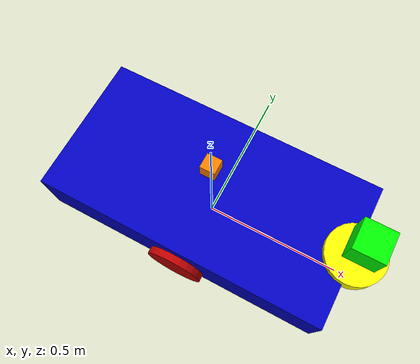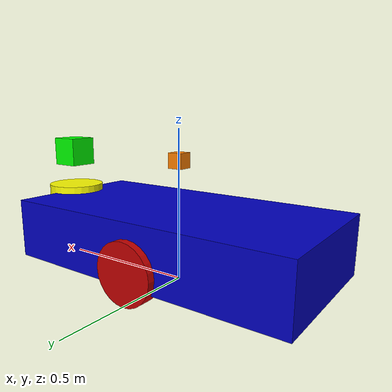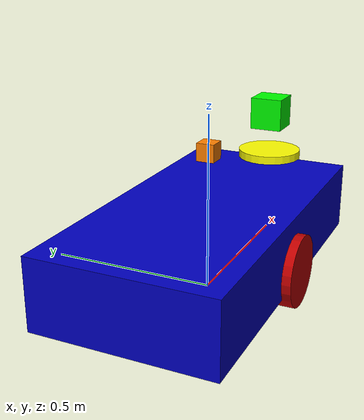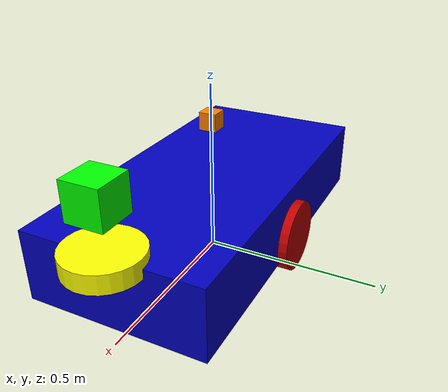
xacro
<?xml version="1.0"?>
<robot name="robor" xmlns:xacro="http://ros.org/wiki/xacro">

  <!-- Common Properties -->
    <xacro:property name="wheel_radius" value="0.1"/>
    <xacro:property name="wheel_length" value="0.05"/>
    <xacro:property name="body_length" value="1.0"/>
    <xacro:property name="body_width" value="0.5"/>
    <xacro:property name="body_height" value="0.2"/>
    <xacro:property name="sensor_box_size" value="0.1"/>
    <xacro:property name="imu_box_size" value="0.05"/>

    <link name="world"/>

    <joint name="world_to_base_link" type="">
        <parent link="world"/>
        <child link="base_link"/>
        <origin xyz="0 0 0.1" rpy="0 0 0"/>
    </joint>

    <!-- Main Body -->
    <link name="base_link">
    <inertial>
        <origin xyz="0 0 0.1"/>
        <mass value="5.0"/>
        <inertia ixx="1.0" ixy="0.0" ixz="0.0" iyy="1.0" iyz="0.0" izz="1.0"/>
    </inertial>

        <collision name="base_link_collision">
            <geometry>
            <box size="${body_length} ${body_width} ${body_height}"/>
            </geometry>
            <origin xyz="0 0 0.5"/>
        </collision>
        <visual>
            <geometry>
            <box size="${body_length} ${body_width} ${body_height}"/>
            </geometry>
            <material name="blue">
            <color rgba="0 0 0.75 1"/>
            </material>
            <origin xyz="0 0 0.05" rpy="0 0 0"/>
        </visual>
    </link>

            <!-- Wheels -->
    <link name="wheel1">
        <inertial>
        <origin xyz="0 0 0"/>
        <mass value="0.5"/>
        <inertia ixx="0.005" ixy="0.0" ixz="0.0" iyy="0.005" iyz="0.0" izz="0.005"/>
        </inertial>
        <collision name="wheel1_collision">
        <geometry>
            <cylinder radius="${wheel_radius}" length="${wheel_length}"/>
        </geometry>
        <origin xyz="0 0 0" rpy="1.57 0 0"/>
        <surface>
            <friction>
            <ode>
                <mu>1.0</mu>
                <mu2>1.0</mu2>
            </ode>
            </friction>
        </surface>
        </collision>
        <visual>
        <geometry>
            <cylinder radius="${wheel_radius}" length="${wheel_length}"/>
        </geometry>
        <material name="red">
            <color rgba="0.75 0 0 1"/>
        </material>
        <origin xyz="0 0 0" rpy="1.57 0 0"/>
        </visual>
    </link>

    <!-- Wheel 2 -->
    <link name="wheel2">
        <inertial>
        <origin xyz="0 0 0"/>
        <mass value="0.5"/>
        <inertia ixx="0.005" ixy="0.0" ixz="0.0" iyy="0.005" iyz="0.0" izz="0.005"/>
        </inertial>
        <collision name="wheel2_collision">
        <geometry>
            <cylinder radius="${wheel_radius}" length="${wheel_length}"/>
        </geometry>
        <origin xyz="0 0 0" rpy="1.57 0 0"/>
        <surface>
            <friction>
            <ode>
                <mu>1.0</mu>
                <mu2>1.0</mu2>
            </ode>
            </friction>
        </surface>
        </collision>
        <visual>
        <geometry>
            <cylinder radius="${wheel_radius}" length="${wheel_length}"/>
        </geometry>
        <material name="red">
            <color rgba="0.75 0 0 1"/>
        </material>
        <origin xyz="0 0 0" rpy="1.57 0 0"/>
        </visual>
    </link>

    <!-- Camera -->
    <link name="camera_link">
        <visual>
        <geometry>
            <box size="${sensor_box_size} ${sensor_box_size} ${sensor_box_size}"/>
        </geometry>
        <material name="green">
            <color rgba="0 1 0 1"/>
        </material>
        <origin xyz="0.5 0 0.3" rpy="0 0 0"/>
        </visual>
    </link>

    <!-- Lidar -->
    <link name="lidar_link">
        <visual>
        <geometry>
            <cylinder radius="${wheel_radius}" length="${wheel_length}"/>
        </geometry>
        <material name="yellow">
            <color rgba="1 1 0 1"/>
        </material>
        <origin xyz="0.5 0 0.15" rpy="0 0 0"/>
        </visual>
    </link>

    <!-- IMU -->
    <link name="imu_link">
        <visual>
        <geometry>
            <box size="${imu_box_size} ${imu_box_size} ${imu_box_size}"/>
        </geometry>
        <material name="orange">
            <color rgba="1 0.5 0 1"/>
        </material>
        <origin xyz="0 0 0.3" rpy="0 0 0"/>
        </visual>
    </link>

  <!-- Joints -->
    <joint name="base_link_wheel1" type="continuous">
        <parent link="base_link"/>
        <child link="wheel1"/>
        <origin xyz="0 -0.25 0" rpy="0 0 0"/>
        <axis xyz="0 1 0"/>
        <limit effort="10.0" velocity="10.0"/>
        <dynamics damping="0.1" friction="0.1"/>
        </joint>

        <joint name="base_link_wheel2" type="continuous">
        <parent link="base_link"/>
        <child link="wheel2"/>
        <origin xyz="0 0.25 0" rpy="0 0 0"/>
        <axis xyz="0 1 0"/>
        <limit effort="10.0" velocity="10.0"/>
        <dynamics damping="0.1" friction="0.1"/>
    </joint>

    <joint name="base_link_camera" type="fixed">
        <parent link="base_link"/>
        <child link="camera_link"/>
    </joint>

    <joint name="base_link_lidar" type="fixed">
        <parent link="base_link"/>
        <child link="lidar_link"/>
    </joint>

    <joint name="base_link_imu" type="fixed">
        <parent link="base_link"/>
        <child link="imu_link"/>
    </joint>

    <transmission name="base_link_wheel1_trans">
        <type>transmission_interface/SimpleTransmission</type>
        <joint name="base_link_wheel1">
            <hardwareInterface>EffortJointInterface</hardwareInterface>
        </joint>
        <actuator name="wheel1_motor">
            <mechanicalReduction>1.0</mechanicalReduction>
        </actuator>
        </transmission>

        <transmission name="base_link_wheel2_trans">
        <type>transmission_interface/SimpleTransmission</type>
        <joint name="base_link_wheel2">
            <hardwareInterface>EffortJointInterface</hardwareInterface>
        </joint>
        <actuator name="wheel2_motor">
            <mechanicalReduction>1.0</mechanicalReduction>
        </actuator>
    </transmission>

  <!-- Plugins -->
    <gazebo>
        <plugin name="diff_drive_controller" filename="libgazebo_ros_diff_drive.so">
            <left_joint>base_link_wheel1</left_joint>
            <right_joint>base_link_wheel2</right_joint>
            <wheel_separation>0.5</wheel_separation>
            <wheel_radius>0.1</wheel_radius>
            <wheel_diameter>0.2</wheel_diameter>
            <torque>1.0</torque>
            <update_rate>50</update_rate>
            <cmd_vel_topic>cmd_vel</cmd_vel_topic>
            <odom_topic>odom</odom_topic>
            <odometry_frame>odom</odometry_frame>
            <robot_base_frame>base_link</robot_base_frame>
            <publish_wheel_tf>false</publish_wheel_tf>
            <publish_odom_tf>true</publish_odom_tf>
            <update_rate>30</update_rate>
        </plugin>
    </gazebo>

    <gazebo>
        <plugin name="camera_plugin" filename="libgazebo_ros_camera.so">
        <robotNamespace>/</robotNamespace>
        <cameraName>camera</cameraName>
        <frameName>camera_link</frameName>
        <imageTopicName>camera/image_raw</imageTopicName>
        <cameraInfoTopicName>camera/camera_info</cameraInfoTopicName>
        <updateRate>30</updateRate>
        </plugin>
    </gazebo>

    <gazebo>
        <plugin name="lidar_plugin" filename="libgazebo_ros_laser.so">
        <robotNamespace>/</robotNamespace>
        <frameName>lidar_link</frameName>
        <topicName>scan</topicName>
        <updateRate>30</updateRate>
        <rangeMin>0.12</rangeMin>
        <rangeMax>3.5</rangeMax>
        <samples>360</samples>
        <resolution>1.0</resolution>
        </plugin>
    </gazebo>

    <gazebo>
        <plugin name="imu_plugin" filename="libgazebo_ros_imu_sensor.so">
        <robotNamespace>/</robotNamespace>
        <bodyName>imu_link</bodyName>
        <updateRate>200</updateRate>
        <topicName>imu/data</topicName>
        <frameName>imu_link</frameName>
        </plugin>
    </gazebo>

</robot>
